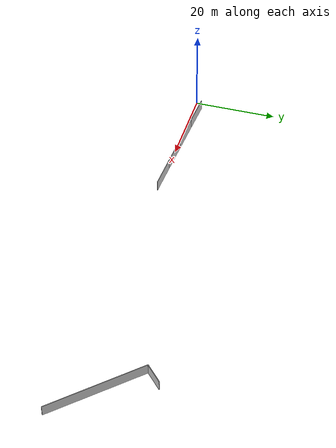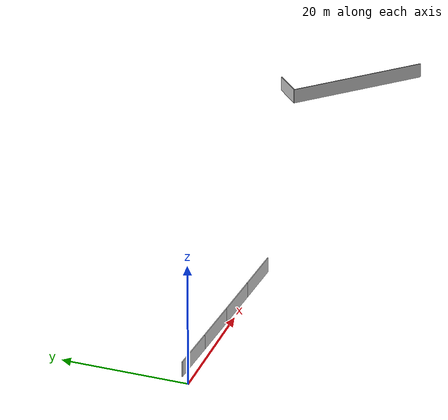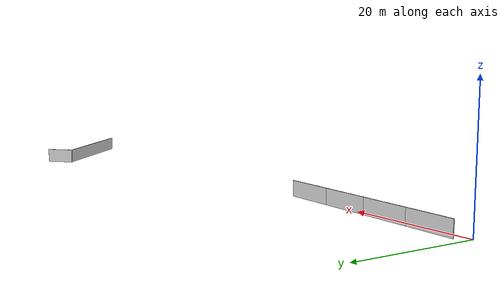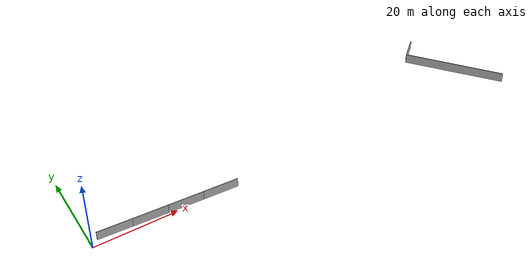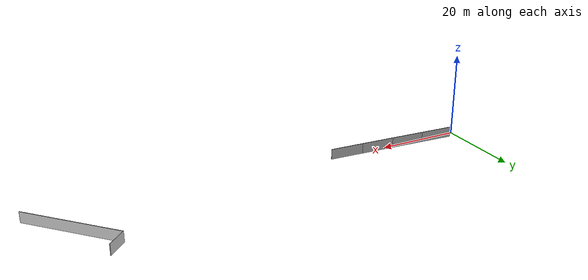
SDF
<?xml version="1.0" ?>
<sdf version="1.6">
  <model name="sps_2001">
    <pose frame="">0 0 0 0 -0 0</pose>
    <static>1</static>
    <self_collide>0</self_collide>
    <allow_auto_disable>0</allow_auto_disable>
    <link name="Wall2682">
      <kinematic>0</kinematic>
      <gravity>1</gravity>
      <self_collide>0</self_collide>
      <collision name="collision">
        <geometry>
          <box>
            <size>23.3425 0.15 2.5</size>
          </box>
        </geometry>
        <pose frame="">0 0 0 0 -0 0</pose>
      </collision>
      <visual name="visual">
        <geometry>
          <box>
            <size>23.3425 0.15 2.5</size>
          </box>
        </geometry>
        <pose frame="">0 0 0 0 -0 0</pose>
        <cast_shadows>1</cast_shadows>
        <transparency>0.0</transparency>
      </visual>
      <pose frame="">96.636 5.52809 1.25 0 -0 2.3275</pose>
    </link>
    <link name="Wall2683">
      <kinematic>0</kinematic>
      <gravity>1</gravity>
      <self_collide>0</self_collide>
      <collision name="collision">
        <geometry>
          <box>
            <size>5.00062 0.15 2.5</size>
          </box>
        </geometry>
        <pose frame="">0 0 0 0 -0 0</pose>
      </collision>
      <visual name="visual">
        <geometry>
          <box>
            <size>5.00062 0.15 2.5</size>
          </box>
        </geometry>
        <pose frame="">0 0 0 0 -0 0</pose>
        <cast_shadows>1</cast_shadows>
        <transparency>0.0</transparency>
      </visual>
      <pose frame="">90.4415 15.7308 1.25 0 -0 0.75668</pose>
    </link>
    <link name="Wall4291">
      <kinematic>0</kinematic>
      <gravity>1</gravity>
      <self_collide>0</self_collide>
      <collision name="collision">
        <geometry>
          <box>
            <size>8.25181 0.15 2.5</size>
          </box>
        </geometry>
        <pose frame="">0 0 0 0 -0 0</pose>
      </collision>
      <visual name="visual">
        <geometry>
          <box>
            <size>8.25181 0.15 2.5</size>
          </box>
        </geometry>
        <pose frame="">0 0 0 0 -0 0</pose>
        <cast_shadows>1</cast_shadows>
        <transparency>0.0</transparency>
      </visual>
      <pose frame="">5.78725 1.36439 1.25 0 0 -0.0577846</pose>
    </link>
    <link name="Wall4292">
      <kinematic>0</kinematic>
      <gravity>1</gravity>
      <self_collide>0</self_collide>
      <collision name="collision">
        <geometry>
          <box>
            <size>8.25205 0.15 2.5</size>
          </box>
        </geometry>
        <pose frame="">0 0 0 0 -0 0</pose>
      </collision>
      <visual name="visual">
        <geometry>
          <box>
            <size>8.25205 0.15 2.5</size>
          </box>
        </geometry>
        <pose frame="">0 0 0 0 -0 0</pose>
        <cast_shadows>1</cast_shadows>
        <transparency>0.0</transparency>
      </visual>
      <pose frame="">14.026 0.897597 1.25 0 0 -0.0554123</pose>
    </link>
    <link name="Wall4293">
      <kinematic>0</kinematic>
      <gravity>1</gravity>
      <self_collide>0</self_collide>
      <collision name="collision">
        <geometry>
          <box>
            <size>8.2518 0.15 2.5</size>
          </box>
        </geometry>
        <pose frame="">0 0 0 0 -0 0</pose>
      </collision>
      <visual name="visual">
        <geometry>
          <box>
            <size>8.2518 0.15 2.5</size>
          </box>
        </geometry>
        <pose frame="">0 0 0 0 -0 0</pose>
        <cast_shadows>1</cast_shadows>
        <transparency>0.0</transparency>
      </visual>
      <pose frame="">22.2657 0.450179 1.25 0 0 -0.0530807</pose>
    </link>
    <link name="Wall4294">
      <kinematic>0</kinematic>
      <gravity>1</gravity>
      <self_collide>0</self_collide>
      <collision name="collision">
        <geometry>
          <box>
            <size>8.25223 0.15 2.5</size>
          </box>
        </geometry>
        <pose frame="">0 0 0 0 -0 0</pose>
      </collision>
      <visual name="visual">
        <geometry>
          <box>
            <size>8.25223 0.15 2.5</size>
          </box>
        </geometry>
        <pose frame="">0 0 0 0 -0 0</pose>
        <cast_shadows>1</cast_shadows>
        <transparency>0.0</transparency>
      </visual>
      <pose frame="">30.5066 0.022292 1.25 0 0 -0.0506709</pose>
    </link>
  </model>
</sdf>
